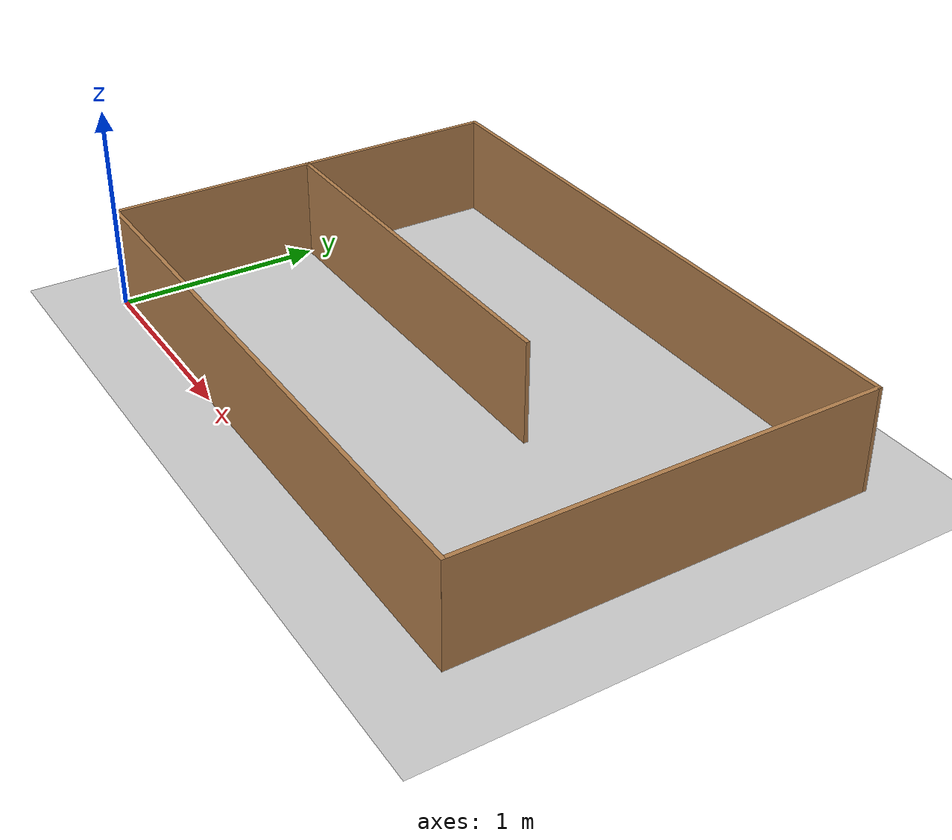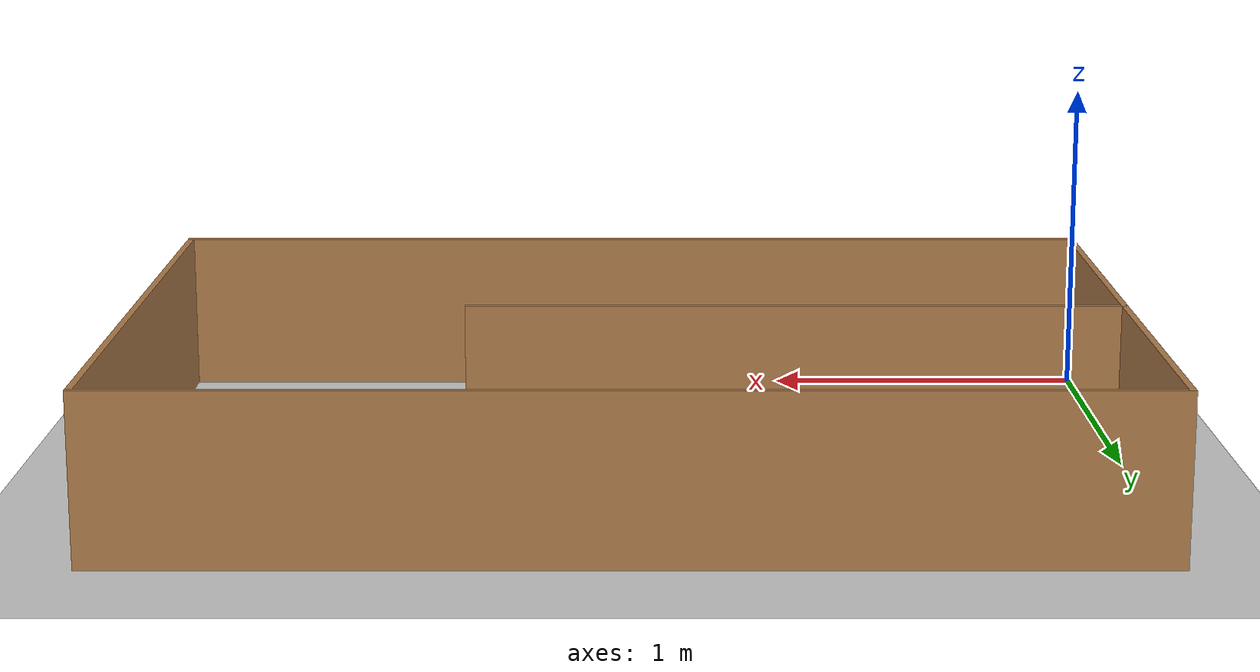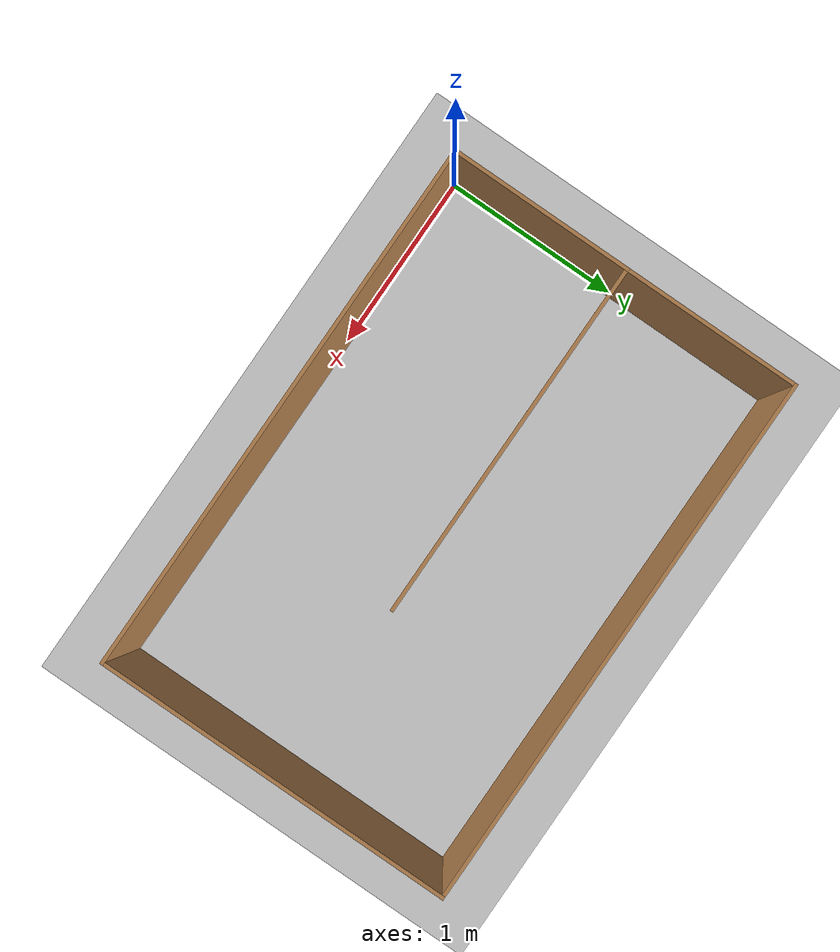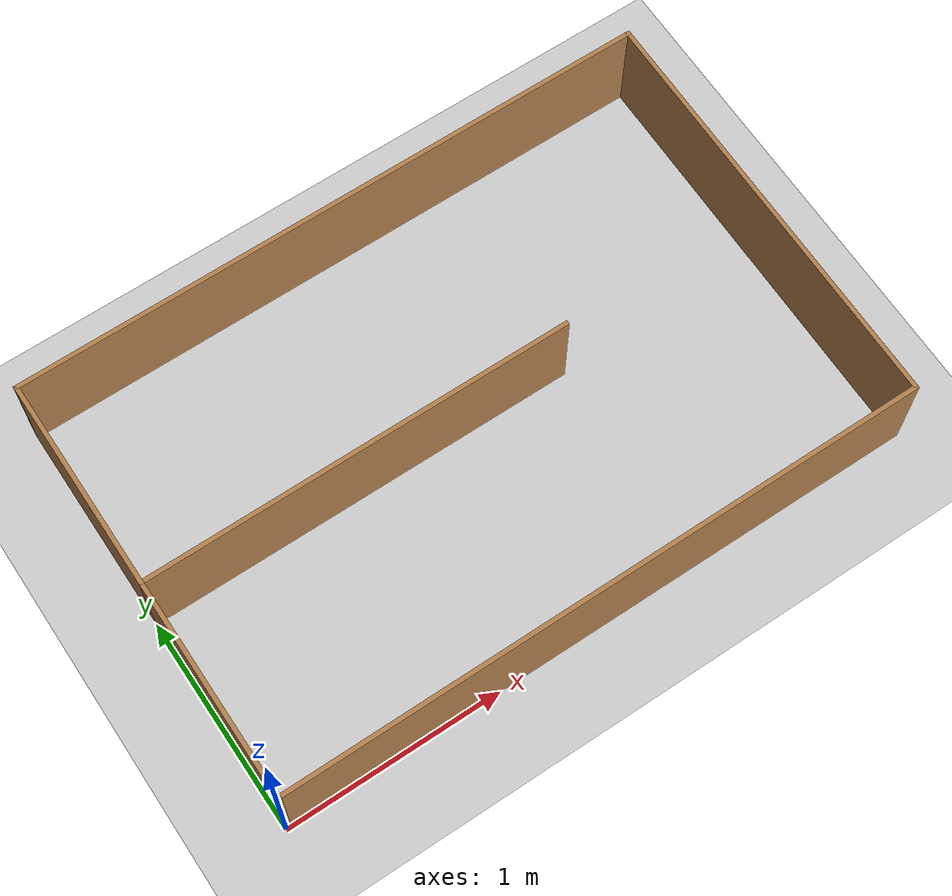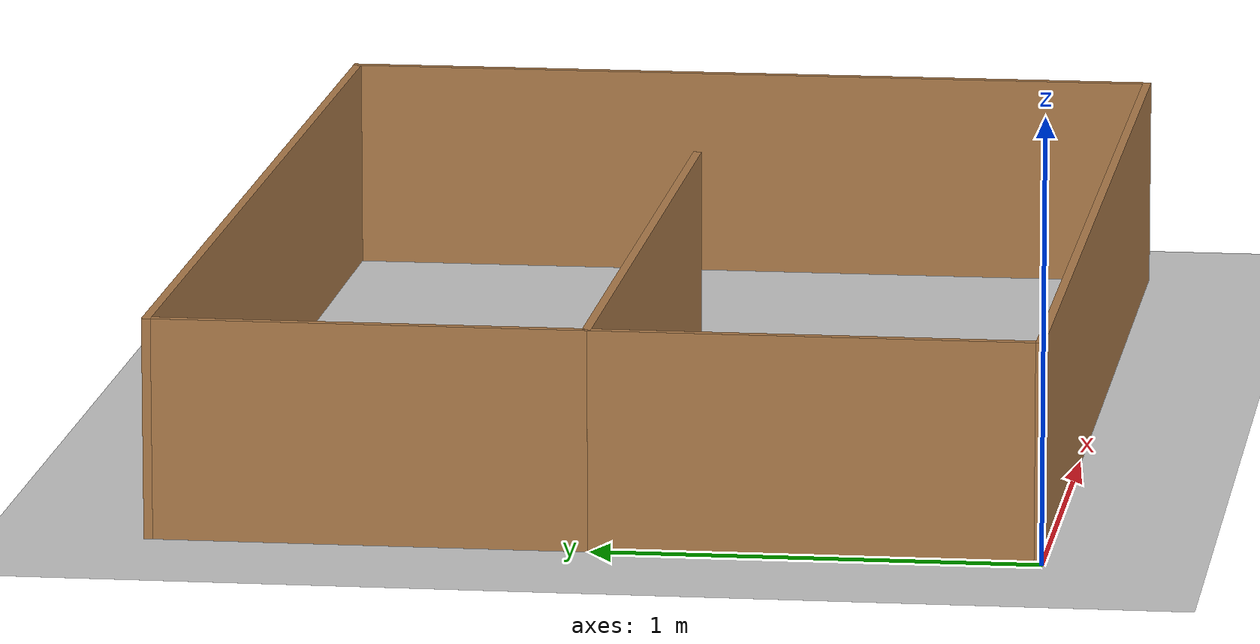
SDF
<sdf version="1.6">
 <world name="default">
  <light name="sun" type="directional">
   <pose>0 0 10 0 -0 0</pose>
   <diffuse>0.8 0.8 0.8 1</diffuse>
   <specular>0.2 0.2 0.2 1</specular>
   <attenuation>
    <range>1000</range>
    <constant>0.9</constant>
    <linear>0.01</linear>
    <quadratic>0.001</quadratic>
   </attenuation>
   <direction>-0.5 0.1 -0.9</direction>
  </light>
  <model name="ground_plane">
   <static>1</static>
   <link name="link">
    <collision name="collision">
     <geometry><plane><normal>0 0 1</normal><size>100 100</size></plane></geometry>
     <surface>
      <contact><collide_bitmask>65535</collide_bitmask></contact>
      <friction><ode><mu>100</mu><mu2>50</mu2></ode></friction>
     </surface>
    </collision>
    <visual name="visual">
     <cast_shadows>0</cast_shadows>
     <geometry><plane><normal>0 0 1</normal><size>100 100</size></plane></geometry>
     <material>
      <script><uri>file://media/materials/scripts/gazebo.material</uri><name>Gazebo/Grey</name></script>
     </material>
    </visual>
   </link>
  </model>
  <gravity>0 0 -9.8</gravity>
  <magnetic_field>6e-06 2.3e-05 -4.2e-05</magnetic_field>
  <atmosphere type="adiabatic"/>
  <physics name="default_physics" default="0" type="ode">
   <max_step_size>0.001</max_step_size>
   <real_time_factor>1</real_time_factor>
   <real_time_update_rate>1000</real_time_update_rate>
  </physics>
  <scene><ambient>0.4 0.4 0.4 1</ambient><background>0.7 0.7 0.7 1</background><shadows>1</shadows></scene>
  <audio><device>default</device></audio>
  <spherical_coordinates>
   <surface_model>EARTH_WGS84</surface_model>
   <latitude_deg>0</latitude_deg>
   <longitude_deg>0</longitude_deg>
   <elevation>0</elevation>
   <heading_deg>0</heading_deg>
  </spherical_coordinates>
  <model name="Motion4">
   <pose>1.49974 0.998399 0 0 -0 0</pose>
   <link name="Wall_0">
    <collision name="Wall_0_Collision">
     <geometry><box><size>3 0.02 0.5</size></box></geometry>
     <pose>0 0 0.25 0 -0 0</pose>
    </collision>
    <visual name="Wall_0_Visual">
     <pose>0 0 0.25 0 -0 0</pose>
     <geometry><box><size>3 0.02 0.5</size></box></geometry>
     <material>
      <script><uri>file://media/materials/scripts/gazebo.material</uri><name>Gazebo/Wood</name></script>
      <ambient>1 1 1 1</ambient>
     </material>
     <meta><layer>0</layer></meta>
    </visual>
    <pose>-0.000247 -0.990229 0 0 -0 0</pose>
   </link>
   <link name="Wall_11">
    <collision name="Wall_11_Collision">
     <geometry><box><size>1.02046 0.02 0.5</size></box></geometry>
     <pose>0 0 0.25 0 -0 0</pose>
    </collision>
    <visual name="Wall_11_Visual">
     <pose>0 0 0.25 0 -0 0</pose>
     <geometry><box><size>1.02046 0.02 0.5</size></box></geometry>
     <material>
      <script><uri>file://media/materials/scripts/gazebo.material</uri><name>Gazebo/Wood</name></script>
      <ambient>1 1 1 1</ambient>
     </material>
     <meta><layer>0</layer></meta>
    </visual>
    <pose>-1.49 -0.489998 0 0 -0 1.5703</pose>
   </link>
   <link name="Wall_3">
    <collision name="Wall_3_Collision">
     <geometry><box><size>2 0.02 0.5</size></box></geometry>
     <pose>0 0 0.25 0 -0 0</pose>
    </collision>
    <visual name="Wall_3_Visual">
     <pose>0 0 0.25 0 -0 0</pose>
     <geometry><box><size>2 0.02 0.5</size></box></geometry>
     <material>
      <script><uri>file://media/materials/scripts/gazebo.material</uri><name>Gazebo/Wood</name></script>
      <ambient>1 1 1 1</ambient>
     </material>
     <meta><layer>0</layer></meta>
    </visual>
    <pose>1.49 2e-06 0 0 -0 1.57055</pose>
   </link>
   <link name="Wall_5">
    <collision name="Wall_5_Collision">
     <geometry><box><size>3 0.02 0.5</size></box></geometry>
     <pose>0 0 0.25 0 -0 0</pose>
    </collision>
    <visual name="Wall_5_Visual">
     <pose>0 0 0.25 0 -0 0</pose>
     <geometry><box><size>3 0.02 0.5</size></box></geometry>
     <material>
      <script><uri>file://media/materials/scripts/gazebo.material</uri><name>Gazebo/Wood</name></script>
      <ambient>1 1 1 1</ambient>
     </material>
     <meta><layer>0</layer></meta>
    </visual>
    <pose>0.00025 0.990233 0 0 -0 3.14159</pose>
   </link>
   <link name="Wall_7">
    <collision name="Wall_7_Collision">
     <geometry><box><size>1 0.02 0.5</size></box></geometry>
     <pose>0 0 0.25 0 -0 0</pose>
    </collision>
    <visual name="Wall_7_Visual">
     <pose>0 0 0.25 0 -0 0</pose>
     <geometry><box><size>1 0.02 0.5</size></box></geometry>
     <material>
      <script><uri>file://media/materials/scripts/gazebo.material</uri><name>Gazebo/Wood</name></script>
      <ambient>1 1 1 1</ambient>
     </material>
     <meta><layer>0</layer></meta>
    </visual>
    <pose>-1.48975 0.500233 0 0 -0 -1.5708</pose>
   </link>
   <link name="Wall_9">
    <collision name="Wall_9_Collision">
     <geometry><box><size>2 0.02 0.5</size></box></geometry>
     <pose>0 0 0.25 0 -0 0</pose>
    </collision>
    <visual name="Wall_9_Visual">
     <pose>0 0 0.25 0 -0 0</pose>
     <geometry><box><size>2 0.02 0.5</size></box></geometry>
     <material>
      <script><uri>file://media/materials/scripts/gazebo.material</uri><name>Gazebo/Wood</name></script>
      <ambient>1 1 1 1</ambient>
     </material>
     <meta><layer>0</layer></meta>
    </visual>
    <pose>-0.49975 0.010233 0 0 -0 0</pose>
   </link>
   <static>1</static>
  </model>
 </world>
</sdf>
